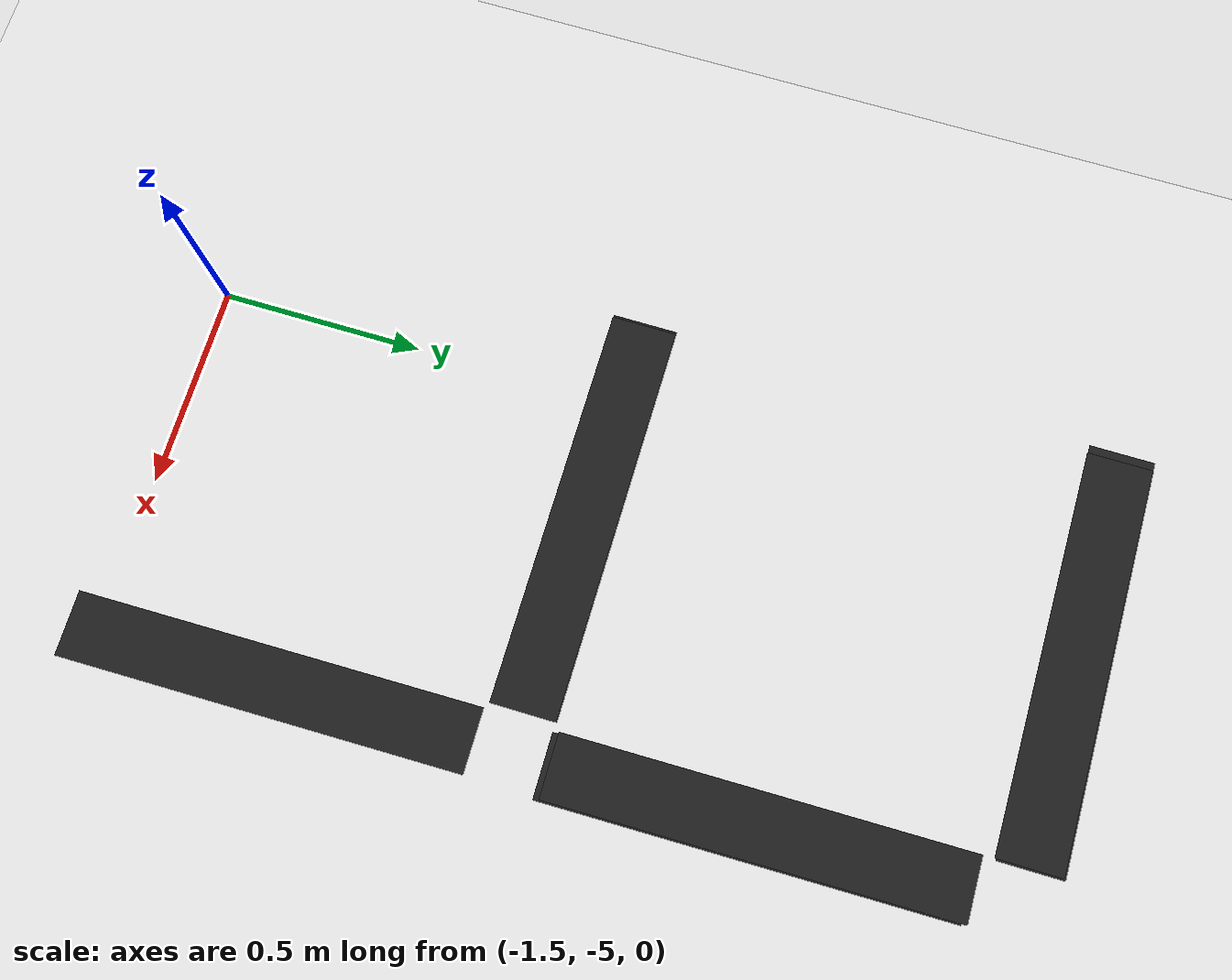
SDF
<sdf version="1.7">
 <world name="default">
  <model name="ground_plane">
   <static>1</static>
   <link name="link">
    <collision name="collision">
     <geometry><plane><normal>0 0 1</normal><size>100 100</size></plane></geometry>
     <surface>
      <contact><collide_bitmask>65535</collide_bitmask></contact>
      <friction><ode><mu>100</mu><mu2>50</mu2></ode></friction>
     </surface>
    </collision>
    <visual name="visual">
     <cast_shadows>0</cast_shadows>
     <geometry><plane><normal>0 0 1</normal><size>100 100</size></plane></geometry>
     <material>
      <script><uri>file://media/materials/scripts/gazebo.material</uri><name>Gazebo/White</name></script>
     </material>
    </visual>
   </link>
  </model>
  <model name="unit_box_clone_0_clone_clone_0_clone_0">
   <link name="link">
    <inertial>
     <mass>1</mass>
     <inertia>
      <ixx>0.166667</ixx>
      <ixy>0</ixy>
      <ixz>0</ixz>
      <iyy>0.166667</iyy>
      <iyz>0</iyz>
      <izz>0.166667</izz>
     </inertia>
    </inertial>
    <visual name="visual">
     <geometry><box><size>1 0.160776 0.000937</size></box></geometry>
     <material>
      <script><name>Gazebo/Black</name><uri>file://media/materials/scripts/gazebo.material</uri></script>
      <shader type="pixel"><normal_map>__default__</normal_map></shader>
      <ambient>0 0 0 1</ambient>
      <diffuse>0 0 0 1</diffuse>
      <specular>0.1 0.1 0.1 1</specular>
      <emissive>0 0 0 1</emissive>
     </material>
    </visual>
    <collision name="collision">
     <geometry><box><size>1 0.160776 0.000937</size></box></geometry>
     <surface>
      <friction>
       <ode><mu>1</mu><mu2>1</mu2><fdir1>0 0 0</fdir1><slip1>0</slip1><slip2>0</slip2></ode>
       <torsional>
        <coefficient>1</coefficient>
        <patch_radius>0</patch_radius>
        <surface_radius>0</surface_radius>
        <use_patch_radius>1</use_patch_radius>
        <ode><slip>0</slip></ode>
       </torsional>
      </friction>
      <bounce><restitution_coefficient>0</restitution_coefficient><threshold>1e+06</threshold></bounce>
      <contact>
       <collide_without_contact>0</collide_without_contact>
       <collide_without_contact_bitmask>1</collide_without_contact_bitmask>
       <collide_bitmask>1</collide_bitmask>
       <ode>
        <soft_cfm>0</soft_cfm>
        <soft_erp>0.2</soft_erp>
        <kp>1e+13</kp>
        <kd>1</kd>
        <max_vel>0.01</max_vel>
        <min_depth>0</min_depth>
       </ode>
       <bullet>
        <split_impulse>1</split_impulse>
        <split_impulse_penetration_threshold>-0.01</split_impulse_penetration_threshold>
        <soft_cfm>0</soft_cfm>
        <soft_erp>0.2</soft_erp>
        <kp>1e+13</kp>
        <kd>1</kd>
       </bullet>
      </contact>
     </surface>
    </collision>
   </link>
   <static>0</static>
   <pose>-1.20913 -2.78457 0.00188 -1.4e-05 0.000134 -0.000392</pose>
  </model>
  <model name="unit_box_clone_0_clone_clone_0_clone_clone_clone_2_clone">
   <link name="link">
    <inertial>
     <mass>1</mass>
     <inertia>
      <ixx>0.166667</ixx>
      <ixy>0</ixy>
      <ixz>0</ixz>
      <iyy>0.166667</iyy>
      <iyz>0</iyz>
      <izz>0.166667</izz>
     </inertia>
    </inertial>
    <visual name="visual">
     <geometry><box><size>1 0.160776 0.000937</size></box></geometry>
     <material>
      <script><name>Gazebo/Black</name><uri>file://media/materials/scripts/gazebo.material</uri></script>
      <shader type="pixel"><normal_map>__default__</normal_map></shader>
      <ambient>0 0 0 1</ambient>
      <diffuse>0 0 0 1</diffuse>
      <specular>0.1 0.1 0.1 1</specular>
      <emissive>0 0 0 1</emissive>
     </material>
    </visual>
    <collision name="collision">
     <geometry><box><size>1 0.160776 0.000937</size></box></geometry>
     <surface>
      <friction>
       <ode><mu>1</mu><mu2>1</mu2><fdir1>0 0 0</fdir1><slip1>0</slip1><slip2>0</slip2></ode>
       <torsional>
        <coefficient>1</coefficient>
        <patch_radius>0</patch_radius>
        <surface_radius>0</surface_radius>
        <use_patch_radius>1</use_patch_radius>
        <ode><slip>0</slip></ode>
       </torsional>
      </friction>
      <bounce><restitution_coefficient>0</restitution_coefficient><threshold>1e+06</threshold></bounce>
      <contact>
       <collide_without_contact>0</collide_without_contact>
       <collide_without_contact_bitmask>1</collide_without_contact_bitmask>
       <collide_bitmask>1</collide_bitmask>
       <ode>
        <soft_cfm>0</soft_cfm>
        <soft_erp>0.2</soft_erp>
        <kp>1e+13</kp>
        <kd>1</kd>
        <max_vel>0.01</max_vel>
        <min_depth>0</min_depth>
       </ode>
       <bullet>
        <split_impulse>1</split_impulse>
        <split_impulse_penetration_threshold>-0.01</split_impulse_penetration_threshold>
        <soft_cfm>0</soft_cfm>
        <soft_erp>0.2</soft_erp>
        <kp>1e+13</kp>
        <kd>1</kd>
       </bullet>
      </contact>
     </surface>
    </collision>
   </link>
   <static>0</static>
   <pose>-0.623841 -3.39088 0.001888 -1.7e-05 0.000153 -1.56223</pose>
  </model>
  <model name="unit_box_clone_0_clone_clone_0_clone_1_clone">
   <link name="link">
    <inertial>
     <mass>1</mass>
     <inertia>
      <ixx>0.166667</ixx>
      <ixy>0</ixy>
      <ixz>0</ixz>
      <iyy>0.166667</iyy>
      <iyz>0</iyz>
      <izz>0.166667</izz>
     </inertia>
    </inertial>
    <visual name="visual">
     <geometry><box><size>1 0.160776 0.000937</size></box></geometry>
     <material>
      <script><name>Gazebo/Black</name><uri>file://media/materials/scripts/gazebo.material</uri></script>
      <shader type="pixel"><normal_map>__default__</normal_map></shader>
      <ambient>0 0 0 1</ambient>
      <diffuse>0 0 0 1</diffuse>
      <specular>0.1 0.1 0.1 1</specular>
      <emissive>0 0 0 1</emissive>
     </material>
    </visual>
    <collision name="collision">
     <geometry><box><size>1 0.160776 0.000937</size></box></geometry>
     <surface>
      <friction>
       <ode><mu>1</mu><mu2>1</mu2><fdir1>0 0 0</fdir1><slip1>0</slip1><slip2>0</slip2></ode>
       <torsional>
        <coefficient>1</coefficient>
        <patch_radius>0</patch_radius>
        <surface_radius>0</surface_radius>
        <use_patch_radius>1</use_patch_radius>
        <ode><slip>0</slip></ode>
       </torsional>
      </friction>
      <bounce><restitution_coefficient>0</restitution_coefficient><threshold>1e+06</threshold></bounce>
      <contact>
       <collide_without_contact>0</collide_without_contact>
       <collide_without_contact_bitmask>1</collide_without_contact_bitmask>
       <collide_bitmask>1</collide_bitmask>
       <ode>
        <soft_cfm>0</soft_cfm>
        <soft_erp>0.2</soft_erp>
        <kp>1e+13</kp>
        <kd>1</kd>
        <max_vel>0.01</max_vel>
        <min_depth>0</min_depth>
       </ode>
       <bullet>
        <split_impulse>1</split_impulse>
        <split_impulse_penetration_threshold>-0.01</split_impulse_penetration_threshold>
        <soft_cfm>0</soft_cfm>
        <soft_erp>0.2</soft_erp>
        <kp>1e+13</kp>
        <kd>1</kd>
       </bullet>
      </contact>
     </surface>
    </collision>
   </link>
   <static>0</static>
   <pose>-1.21848 -3.98477 0.002343 -1e-05 2e-06 -0.000629</pose>
  </model>
  <model name="unit_box_clone_0_clone_clone_0_clone_0_clone">
   <link name="link">
    <inertial>
     <mass>1</mass>
     <inertia>
      <ixx>0.166667</ixx>
      <ixy>0</ixy>
      <ixz>0</ixz>
      <iyy>0.166667</iyy>
      <iyz>0</iyz>
      <izz>0.166667</izz>
     </inertia>
    </inertial>
    <visual name="visual">
     <geometry><box><size>1 0.160776 0.000937</size></box></geometry>
     <material>
      <script><name>Gazebo/Black</name><uri>file://media/materials/scripts/gazebo.material</uri></script>
      <shader type="pixel"><normal_map>__default__</normal_map></shader>
      <ambient>0 0 0 1</ambient>
      <diffuse>0 0 0 1</diffuse>
      <specular>0.1 0.1 0.1 1</specular>
      <emissive>0 0 0 1</emissive>
     </material>
    </visual>
    <collision name="collision">
     <geometry><box><size>1 0.160776 0.000937</size></box></geometry>
     <surface>
      <friction>
       <ode><mu>1</mu><mu2>1</mu2><fdir1>0 0 0</fdir1><slip1>0</slip1><slip2>0</slip2></ode>
       <torsional>
        <coefficient>1</coefficient>
        <patch_radius>0</patch_radius>
        <surface_radius>0</surface_radius>
        <use_patch_radius>1</use_patch_radius>
        <ode><slip>0</slip></ode>
       </torsional>
      </friction>
      <bounce><restitution_coefficient>0</restitution_coefficient><threshold>1e+06</threshold></bounce>
      <contact>
       <collide_without_contact>0</collide_without_contact>
       <collide_without_contact_bitmask>1</collide_without_contact_bitmask>
       <collide_bitmask>1</collide_bitmask>
       <ode>
        <soft_cfm>0</soft_cfm>
        <soft_erp>0.2</soft_erp>
        <kp>1e+13</kp>
        <kd>1</kd>
        <max_vel>0.01</max_vel>
        <min_depth>0</min_depth>
       </ode>
       <bullet>
        <split_impulse>1</split_impulse>
        <split_impulse_penetration_threshold>-0.01</split_impulse_penetration_threshold>
        <soft_cfm>0</soft_cfm>
        <soft_erp>0.2</soft_erp>
        <kp>1e+13</kp>
        <kd>1</kd>
       </bullet>
      </contact>
     </surface>
    </collision>
   </link>
   <static>0</static>
   <pose>-1.20441 -2.78146 0.000943 -5e-06 0.000135 0.001372</pose>
  </model>
  <model name="unit_box_clone_0_clone_clone_0_clone_0_clone_0">
   <link name="link">
    <inertial>
     <mass>1</mass>
     <inertia>
      <ixx>0.166667</ixx>
      <ixy>0</ixy>
      <ixz>0</ixz>
      <iyy>0.166667</iyy>
      <iyz>0</iyz>
      <izz>0.166667</izz>
     </inertia>
    </inertial>
    <visual name="visual">
     <geometry><box><size>1 0.160776 0.000937</size></box></geometry>
     <material>
      <script><name>Gazebo/Black</name><uri>file://media/materials/scripts/gazebo.material</uri></script>
      <shader type="pixel"><normal_map>__default__</normal_map></shader>
      <ambient>0 0 0 1</ambient>
      <diffuse>0 0 0 1</diffuse>
      <specular>0.1 0.1 0.1 1</specular>
      <emissive>0 0 0 1</emissive>
     </material>
    </visual>
    <collision name="collision">
     <geometry><box><size>1 0.160776 0.000937</size></box></geometry>
     <surface>
      <friction>
       <ode><mu>1</mu><mu2>1</mu2><fdir1>0 0 0</fdir1><slip1>0</slip1><slip2>0</slip2></ode>
       <torsional>
        <coefficient>1</coefficient>
        <patch_radius>0</patch_radius>
        <surface_radius>0</surface_radius>
        <use_patch_radius>1</use_patch_radius>
        <ode><slip>0</slip></ode>
       </torsional>
      </friction>
      <bounce><restitution_coefficient>0</restitution_coefficient><threshold>1e+06</threshold></bounce>
      <contact>
       <collide_without_contact>0</collide_without_contact>
       <collide_without_contact_bitmask>1</collide_without_contact_bitmask>
       <collide_bitmask>1</collide_bitmask>
       <ode>
        <soft_cfm>0</soft_cfm>
        <soft_erp>0.2</soft_erp>
        <kp>1e+13</kp>
        <kd>1</kd>
        <max_vel>0.01</max_vel>
        <min_depth>0</min_depth>
       </ode>
       <bullet>
        <split_impulse>1</split_impulse>
        <split_impulse_penetration_threshold>-0.01</split_impulse_penetration_threshold>
        <soft_cfm>0</soft_cfm>
        <soft_erp>0.2</soft_erp>
        <kp>1e+13</kp>
        <kd>1</kd>
       </bullet>
      </contact>
     </surface>
    </collision>
   </link>
   <static>0</static>
   <pose>-1.22911 -2.78209 0.000266 -2e-06 -0.000406 0.000449</pose>
  </model>
  <model name="unit_box_clone_0_clone_clone_0_clone_clone_clone_2_clone_clone_0_clone">
   <link name="link">
    <inertial>
     <mass>1</mass>
     <inertia>
      <ixx>0.166667</ixx>
      <ixy>0</ixy>
      <ixz>0</ixz>
      <iyy>0.166667</iyy>
      <iyz>0</iyz>
      <izz>0.166667</izz>
     </inertia>
    </inertial>
    <visual name="visual">
     <geometry><box><size>1 0.160776 0.000937</size></box></geometry>
     <material>
      <script><name>Gazebo/Black</name><uri>file://media/materials/scripts/gazebo.material</uri></script>
      <shader type="pixel"><normal_map>__default__</normal_map></shader>
      <ambient>0 0 0 1</ambient>
      <diffuse>0 0 0 1</diffuse>
      <specular>0.1 0.1 0.1 1</specular>
      <emissive>0 0 0 1</emissive>
     </material>
    </visual>
    <collision name="collision">
     <geometry><box><size>1 0.160776 0.000937</size></box></geometry>
     <surface>
      <friction>
       <ode><mu>1</mu><mu2>1</mu2><fdir1>0 0 0</fdir1><slip1>0</slip1><slip2>0</slip2></ode>
       <torsional>
        <coefficient>1</coefficient>
        <patch_radius>0</patch_radius>
        <surface_radius>0</surface_radius>
        <use_patch_radius>1</use_patch_radius>
        <ode><slip>0</slip></ode>
       </torsional>
      </friction>
      <bounce><restitution_coefficient>0</restitution_coefficient><threshold>1e+06</threshold></bounce>
      <contact>
       <collide_without_contact>0</collide_without_contact>
       <collide_without_contact_bitmask>1</collide_without_contact_bitmask>
       <collide_bitmask>1</collide_bitmask>
       <ode>
        <soft_cfm>0</soft_cfm>
        <soft_erp>0.2</soft_erp>
        <kp>1e+13</kp>
        <kd>1</kd>
        <max_vel>0.01</max_vel>
        <min_depth>0</min_depth>
       </ode>
       <bullet>
        <split_impulse>1</split_impulse>
        <split_impulse_penetration_threshold>-0.01</split_impulse_penetration_threshold>
        <soft_cfm>0</soft_cfm>
        <soft_erp>0.2</soft_erp>
        <kp>1e+13</kp>
        <kd>1</kd>
       </bullet>
      </contact>
     </surface>
    </collision>
   </link>
   <static>0</static>
   <pose>-0.619372 -3.40423 0.000982 -1e-06 8.8e-05 -1.56186</pose>
  </model>
  <model name="unit_box_clone_0_clone_clone_0_clone_1_clone_clone">
   <link name="link">
    <inertial>
     <mass>1</mass>
     <inertia>
      <ixx>0.166667</ixx>
      <ixy>0</ixy>
      <ixz>0</ixz>
      <iyy>0.166667</iyy>
      <iyz>0</iyz>
      <izz>0.166667</izz>
     </inertia>
    </inertial>
    <visual name="visual">
     <geometry><box><size>1 0.160776 0.000937</size></box></geometry>
     <material>
      <script><name>Gazebo/Black</name><uri>file://media/materials/scripts/gazebo.material</uri></script>
      <shader type="pixel"><normal_map>__default__</normal_map></shader>
      <ambient>0 0 0 1</ambient>
      <diffuse>0 0 0 1</diffuse>
      <specular>0.1 0.1 0.1 1</specular>
      <emissive>0 0 0 1</emissive>
     </material>
    </visual>
    <collision name="collision">
     <geometry><box><size>1 0.160776 0.000937</size></box></geometry>
     <surface>
      <friction>
       <ode><mu>1</mu><mu2>1</mu2><fdir1>0 0 0</fdir1><slip1>0</slip1><slip2>0</slip2></ode>
       <torsional>
        <coefficient>1</coefficient>
        <patch_radius>0</patch_radius>
        <surface_radius>0</surface_radius>
        <use_patch_radius>1</use_patch_radius>
        <ode><slip>0</slip></ode>
       </torsional>
      </friction>
      <bounce><restitution_coefficient>0</restitution_coefficient><threshold>1e+06</threshold></bounce>
      <contact>
       <collide_without_contact>0</collide_without_contact>
       <collide_without_contact_bitmask>1</collide_without_contact_bitmask>
       <collide_bitmask>1</collide_bitmask>
       <ode>
        <soft_cfm>0</soft_cfm>
        <soft_erp>0.2</soft_erp>
        <kp>1e+13</kp>
        <kd>1</kd>
        <max_vel>0.01</max_vel>
        <min_depth>0</min_depth>
       </ode>
       <bullet>
        <split_impulse>1</split_impulse>
        <split_impulse_penetration_threshold>-0.01</split_impulse_penetration_threshold>
        <soft_cfm>0</soft_cfm>
        <soft_erp>0.2</soft_erp>
        <kp>1e+13</kp>
        <kd>1</kd>
       </bullet>
      </contact>
     </surface>
    </collision>
   </link>
   <static>0</static>
   <pose>-1.22419 -3.98233 0.000469 -3e-06 1e-06 -0.000109</pose>
  </model>
  <model name="unit_box_clone_0_clone_clone_0_clone_1_clone_clone_0">
   <link name="link">
    <inertial>
     <mass>1</mass>
     <inertia>
      <ixx>0.166667</ixx>
      <ixy>0</ixy>
      <ixz>0</ixz>
      <iyy>0.166667</iyy>
      <iyz>0</iyz>
      <izz>0.166667</izz>
     </inertia>
    </inertial>
    <visual name="visual">
     <geometry><box><size>1 0.160776 0.000937</size></box></geometry>
     <material>
      <script><name>Gazebo/Black</name><uri>file://media/materials/scripts/gazebo.material</uri></script>
      <shader type="pixel"><normal_map>__default__</normal_map></shader>
      <ambient>0 0 0 1</ambient>
      <diffuse>0 0 0 1</diffuse>
      <specular>0.1 0.1 0.1 1</specular>
      <emissive>0 0 0 1</emissive>
     </material>
    </visual>
    <collision name="collision">
     <geometry><box><size>1 0.160776 0.000937</size></box></geometry>
     <surface>
      <friction>
       <ode><mu>1</mu><mu2>1</mu2><fdir1>0 0 0</fdir1><slip1>0</slip1><slip2>0</slip2></ode>
       <torsional>
        <coefficient>1</coefficient>
        <patch_radius>0</patch_radius>
        <surface_radius>0</surface_radius>
        <use_patch_radius>1</use_patch_radius>
        <ode><slip>0</slip></ode>
       </torsional>
      </friction>
      <bounce><restitution_coefficient>0</restitution_coefficient><threshold>1e+06</threshold></bounce>
      <contact>
       <collide_without_contact>0</collide_without_contact>
       <collide_without_contact_bitmask>1</collide_without_contact_bitmask>
       <collide_bitmask>1</collide_bitmask>
       <ode>
        <soft_cfm>0</soft_cfm>
        <soft_erp>0.2</soft_erp>
        <kp>1e+13</kp>
        <kd>1</kd>
        <max_vel>0.01</max_vel>
        <min_depth>0</min_depth>
       </ode>
       <bullet>
        <split_impulse>1</split_impulse>
        <split_impulse_penetration_threshold>-0.01</split_impulse_penetration_threshold>
        <soft_cfm>0</soft_cfm>
        <soft_erp>0.2</soft_erp>
        <kp>1e+13</kp>
        <kd>1</kd>
       </bullet>
      </contact>
     </surface>
    </collision>
   </link>
   <static>0</static>
   <pose>-1.21906 -3.98248 0.001406 -8e-06 2e-06 -0.000806</pose>
  </model>
  <model name="unit_box_clone_0_clone_clone_0_clone_clone_clone_1_clone_0">
   <link name="link">
    <inertial>
     <mass>1</mass>
     <inertia>
      <ixx>0.166667</ixx>
      <ixy>0</ixy>
      <ixz>0</ixz>
      <iyy>0.166667</iyy>
      <iyz>0</iyz>
      <izz>0.166667</izz>
     </inertia>
    </inertial>
    <visual name="visual">
     <geometry><box><size>1 0.160776 0.000937</size></box></geometry>
     <material>
      <script><name>Gazebo/Black</name><uri>file://media/materials/scripts/gazebo.material</uri></script>
      <shader type="pixel"><normal_map>__default__</normal_map></shader>
      <ambient>0 0 0 1</ambient>
      <diffuse>0 0 0 1</diffuse>
      <specular>0.1 0.1 0.1 1</specular>
      <emissive>0 0 0 1</emissive>
     </material>
    </visual>
    <collision name="collision">
     <geometry><box><size>1 0.160776 0.000937</size></box></geometry>
     <surface>
      <friction>
       <ode><mu>1</mu><mu2>1</mu2><fdir1>0 0 0</fdir1><slip1>0</slip1><slip2>0</slip2></ode>
       <torsional>
        <coefficient>1</coefficient>
        <patch_radius>0</patch_radius>
        <surface_radius>0</surface_radius>
        <use_patch_radius>1</use_patch_radius>
        <ode><slip>0</slip></ode>
       </torsional>
      </friction>
      <bounce><restitution_coefficient>0</restitution_coefficient><threshold>1e+06</threshold></bounce>
      <contact>
       <collide_without_contact>0</collide_without_contact>
       <collide_without_contact_bitmask>1</collide_without_contact_bitmask>
       <collide_bitmask>1</collide_bitmask>
       <ode>
        <soft_cfm>0</soft_cfm>
        <soft_erp>0.2</soft_erp>
        <kp>1e+13</kp>
        <kd>1</kd>
        <max_vel>0.01</max_vel>
        <min_depth>0</min_depth>
       </ode>
       <bullet>
        <split_impulse>1</split_impulse>
        <split_impulse_penetration_threshold>-0.01</split_impulse_penetration_threshold>
        <soft_cfm>0</soft_cfm>
        <soft_erp>0.2</soft_erp>
        <kp>1e+13</kp>
        <kd>1</kd>
       </bullet>
      </contact>
     </surface>
    </collision>
   </link>
   <static>0</static>
   <pose>-0.618851 -4.57316 0.00233 -8e-06 4.4e-05 -1.56199</pose>
  </model>
 </world>
</sdf>
